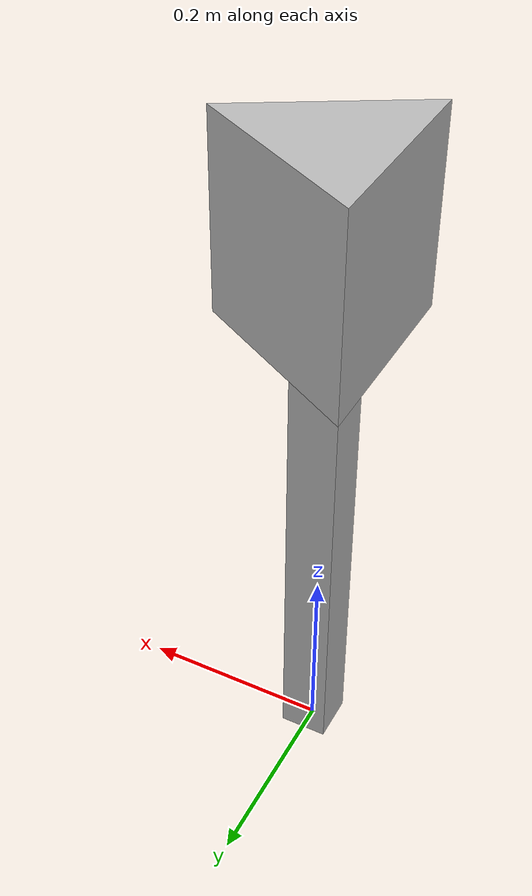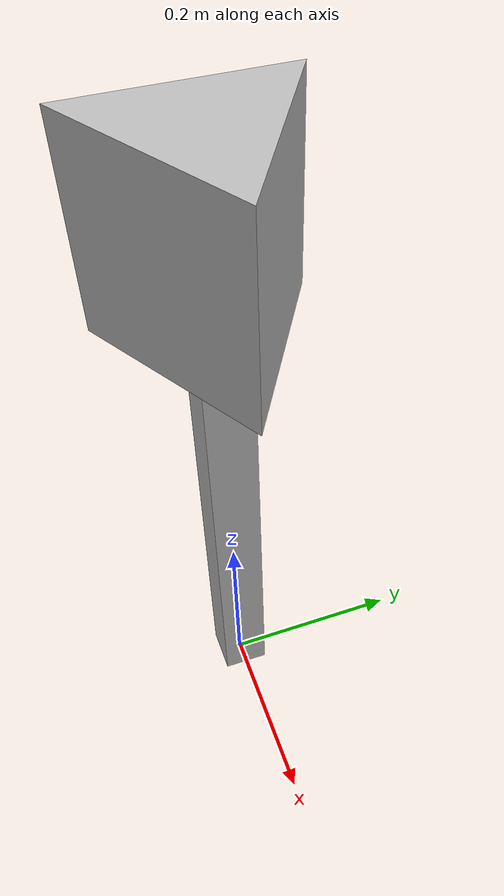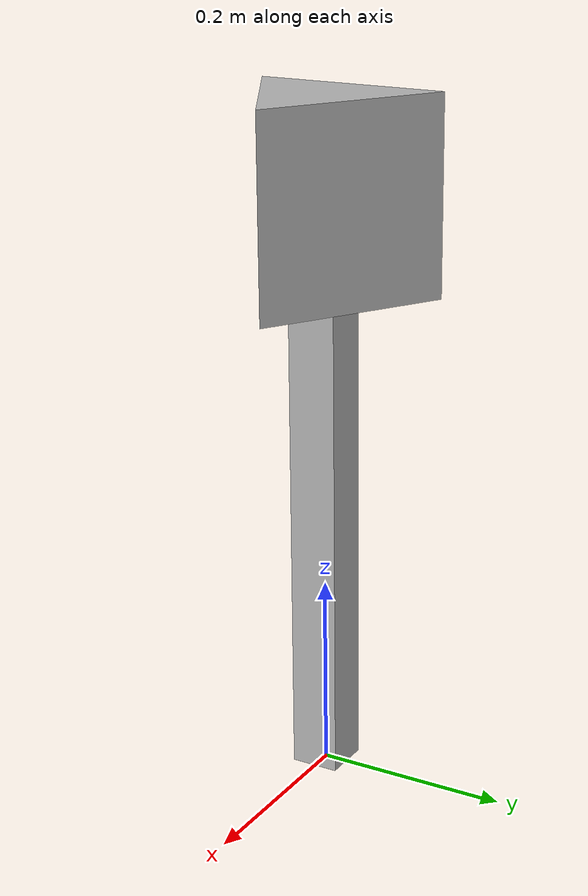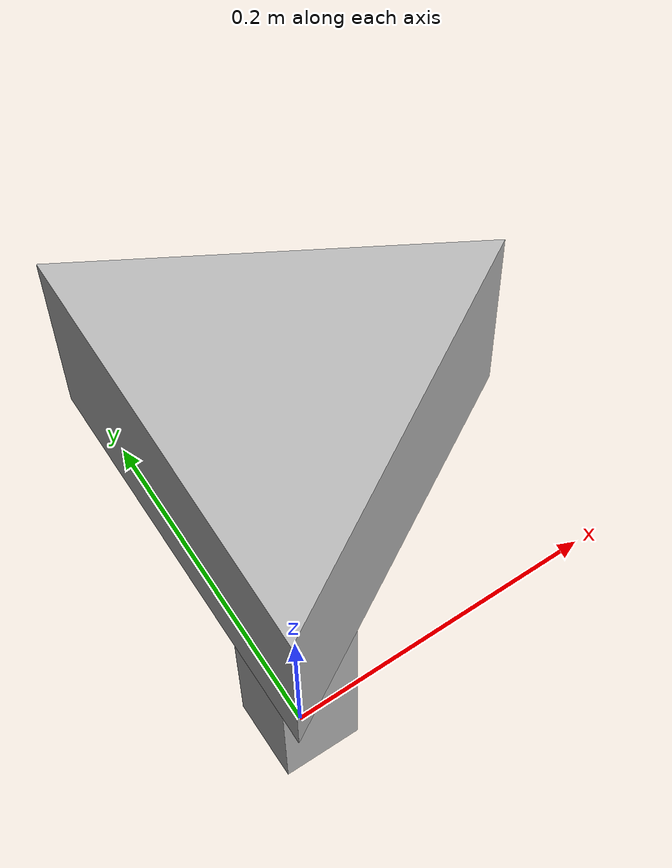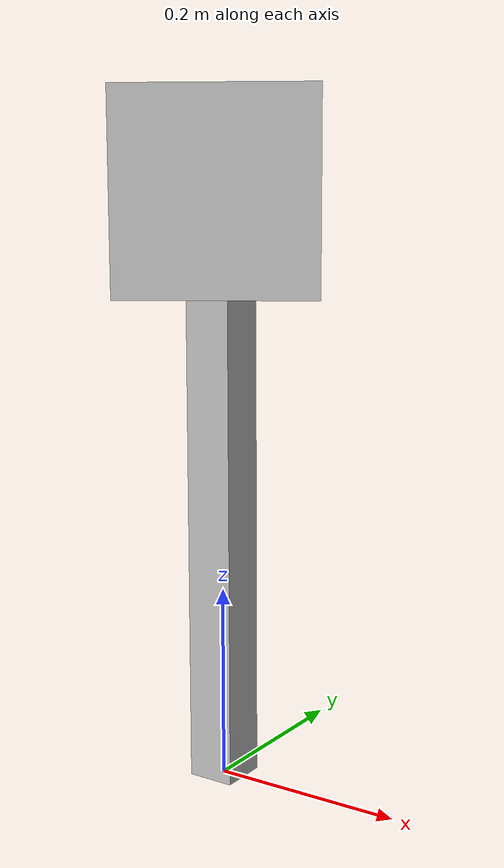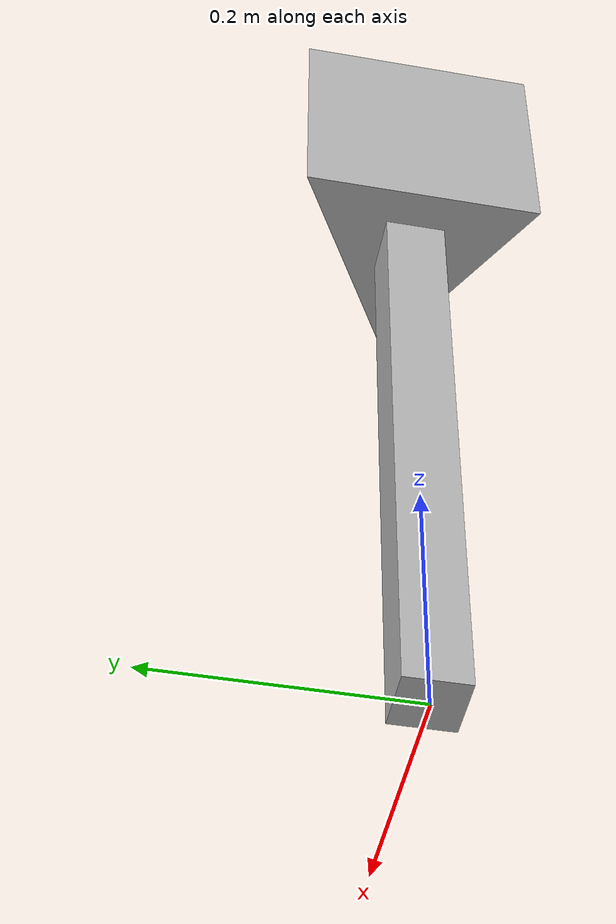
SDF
<?xml version="1.0" ?>
<sdf version="1.6">
  <model name="post09">
    <static>true</static>
    <link name="prism_link">
      <pose>0 0 0.5 0 0 0.523598776</pose>
      <collision name="prism_collision">
        <geometry>
          <mesh>
            <uri>model://post09/meshes/prism09.dae</uri>
          </mesh>
        </geometry>
      </collision>
      <visual name="prism_visual">
        <geometry>
          <mesh>
            <uri>model://post09/meshes/prism09.dae</uri>
          </mesh>
        </geometry>
      </visual>
    </link>
    <link name="post_link">
      <pose>0 0 0 0 0 0</pose>
      <collision name="post_collision">
        <geometry>
          <mesh>
            <uri>model://post09/meshes/post.dae</uri>
            <scale>0.5 0.5 0.5</scale>
          </mesh>
        </geometry>
      </collision>
      <visual name="post_visual">
        <geometry>
          <mesh>
            <uri>model://post09/meshes/post.dae</uri>
            <scale>0.5 0.5 0.5</scale>
          </mesh>
        </geometry>
      </visual>
    </link>
  </model>
</sdf>
